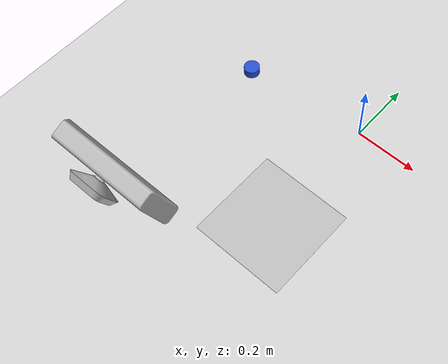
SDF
<sdf version='1.6'>
  <world name='default'>
    <light name='sun' type='directional'>
      <cast_shadows>1</cast_shadows>
      <pose frame=''>0 0 10 0 -0 0</pose>
      <diffuse>0.8 0.8 0.8 1</diffuse>
      <specular>0.2 0.2 0.2 1</specular>
      <attenuation>
        <range>1000</range>
        <constant>0.9</constant>
        <linear>0.01</linear>
        <quadratic>0.001</quadratic>
      </attenuation>
      <direction>-0.5 0.1 -0.9</direction>
    </light>
    <gravity>0 0 -9.8</gravity>
    <magnetic_field>6e-06 2.3e-05 -4.2e-05</magnetic_field>
    <atmosphere type='adiabatic'/>
    <physics name='default_physics' default='0' type='ode'>
      <max_step_size>0.001</max_step_size>
      <real_time_factor>1</real_time_factor>
      <real_time_update_rate>1000</real_time_update_rate>
    </physics>
    <scene>
      <ambient>0.4 0.4 0.4 1</ambient>
      <background>0.7 0.7 0.7 1</background>
      <shadows>1</shadows>
    </scene>
    <wind/>
    <spherical_coordinates>
      <surface_model>EARTH_WGS84</surface_model>
      <latitude_deg>0</latitude_deg>
      <longitude_deg>0</longitude_deg>
      <elevation>0</elevation>
      <heading_deg>0</heading_deg>
    </spherical_coordinates>

    <model name='ground_plane'>
      <static>1</static>
      <link name='link'>
        <collision name='collision'>
          <geometry>
            <plane>
              <normal>0 0 1</normal>
              <size>100 100</size>
            </plane>
          </geometry>
          <surface>
            <contact>
              <collide_bitmask>65535</collide_bitmask>
              <ode/>
            </contact>
            <friction>
              <ode>
                <mu>100</mu>
                <mu2>50</mu2>
              </ode>
              <torsional>
                <ode/>
              </torsional>
            </friction>
            <bounce/>
          </surface>
          <max_contacts>10</max_contacts>
        </collision>
        <visual name='visual'>
          <cast_shadows>0</cast_shadows>
          <geometry>
            <plane>
              <normal>0 0 1</normal>
              <size>100 100</size>
            </plane>
          </geometry>
          <material>
            <script>
              <uri>file://media/materials/scripts/gazebo.material</uri>
              <name>Gazebo/Grey</name>
            </script>
          </material>
        </visual>
        <self_collide>0</self_collide>
        <enable_wind>0</enable_wind>
        <kinematic>0</kinematic>
      </link>
    </model>

    <model name='kinect_ros'>
      <pose frame=''>0 -0.8 0.8 0 1.15 1.58</pose># 1.15
      <link name='camera_link'>
        <inertial>
          <mass>0.1</mass>
          #<pose frame=''>0 0 0 0 -0 0</pose>
          <inertia>
            <ixx>1</ixx>
            <ixy>0</ixy>
            <ixz>0</ixz>
            <iyy>1</iyy>
            <iyz>0</iyz>
            <izz>1</izz>
          </inertia>
        </inertial>
        <sensor name='kinect' type='depth'>
          <camera name='__default__'>
            <horizontal_fov>1.0472</horizontal_fov>
            <image>
              <width>640</width>
              <height>480</height>
              <format>R8G8B8</format>
            </image>
            <clip>
              <near>0.05</near>
              <far>3</far>
            </clip>
          </camera>
          <update_rate>20</update_rate>
          <visualize>1</visualize>
          <plugin name='kinect_plugin' filename='libgazebo_ros_openni_kinect.so'>
            <baseline>0.2</baseline>
            <updateRate>0.0</updateRate>
            <cameraName>camera_kinect</cameraName>
            <imageTopicName>/camera/color/image_raw</imageTopicName>
            <cameraInfoTopicName>/camera/color/camera_info</cameraInfoTopicName>
            <depthImageTopicName>/camera/depth/image_raw</depthImageTopicName>
            <depthImageCameraInfoTopicName>/camera/depth/camera_info</depthImageCameraInfoTopicName>
            <pointCloudTopicName>/camera/depth/points</pointCloudTopicName>
            <frameName>camera_link_optical</frameName>
            <pointCloudCutoff>0.4</pointCloudCutoff>
            <pointCloudCutoffMax>3.0</pointCloudCutoffMax>
            <distortionK1>0</distortionK1>
            <distortionK2>0</distortionK2>
            <distortionK3>0</distortionK3>
            <distortionT1>0</distortionT1>
            <distortionT2>0</distortionT2>
            <CxPrime>0</CxPrime>
            <Cx>0</Cx>
            <Cy>0</Cy>
            <focalLength>0</focalLength>
            <hackBaseline>0.0</hackBaseline>
          </plugin>
        </sensor>
        <self_collide>0</self_collide>
        <enable_wind>0</enable_wind>
        <kinematic>0</kinematic>
        <pose frame=''>0 0 0 0 -0 0</pose>
        <visual name='visual'>
          <geometry>
            <mesh>
              <uri>model://kinect/meshes/kinect.dae</uri>
            </mesh>
          </geometry>
          <material>
            <shader type='pixel'/>
          </material>
          <pose frame=''>0 0 0 0 -0 0</pose>
          <transparency>0</transparency>
          <cast_shadows>1</cast_shadows>
        </visual>
        <collision name='collision'>
          <laser_retro>0</laser_retro>
          <max_contacts>10</max_contacts>
          <pose frame=''>0 0 0 0 -0 0</pose>
          <geometry>
            <box>
              <size>0.073 0.276 0.072</size>
            </box>
          </geometry>
          <surface>
            <friction>
              <ode>
                <mu>1</mu>
                <mu2>1</mu2>
                <fdir1>0 0 0</fdir1>
                <slip1>0</slip1>
                <slip2>0</slip2>
              </ode>
              <torsional>
                <coefficient>1</coefficient>
                <patch_radius>0</patch_radius>
                <surface_radius>0</surface_radius>
                <use_patch_radius>1</use_patch_radius>
                <ode>
                  <slip>0</slip>
                </ode>
              </torsional>
            </friction>
            <bounce>
              <restitution_coefficient>0</restitution_coefficient>
              <threshold>1e+06</threshold>
            </bounce>
            <contact>
              <collide_without_contact>0</collide_without_contact>
              <collide_without_contact_bitmask>1</collide_without_contact_bitmask>
              <collide_bitmask>1</collide_bitmask>
              <ode>
                <soft_cfm>0</soft_cfm>
                <soft_erp>0.2</soft_erp>
                <kp>1e+13</kp>
                <kd>1</kd>
                <max_vel>0.01</max_vel>
                <min_depth>0</min_depth>
              </ode>
              <bullet>
                <split_impulse>1</split_impulse>
                <split_impulse_penetration_threshold>-0.01</split_impulse_penetration_threshold>
                <soft_cfm>0</soft_cfm>
                <soft_erp>0.2</soft_erp>
                <kp>1e+13</kp>
                <kd>1</kd>
              </bullet>
            </contact>
          </surface>
        </collision>
      </link>
      <static>1</static>
      <allow_auto_disable>1</allow_auto_disable>
    </model>

    <model name='tic_tac_toe_board'>
      <link name='link'>
        <self_collide>0</self_collide>
        <enable_wind>0</enable_wind>
        <kinematic>0</kinematic>
        <pose frame=''>0 0 0 0 -0 0</pose>
        <gravity>1</gravity>
        <visual name='visual'>
          <geometry>
            <box>
              <size>0.3 0.3 0.0001</size>
            </box>
          </geometry>
          <material>
            <script>
              <uri>model://tic_tac_toe_board/materials/scripts</uri>
              <uri>model://tic_tac_toe_board/materials/textures</uri>
              <name>Grid33</name>
            </script>
          </material>
        </visual>
        <collision name='collision'>
          <geometry>
            <box>
              <size>0.3 0.3 0.0003</size>
            </box>
          </geometry>
          <max_contacts>10</max_contacts>
          <surface>
            <contact>
              <ode/>
            </contact>
            <bounce/>
            <friction>
              <torsional>
                <ode/>
              </torsional>
              <ode/>
            </friction>
          </surface>
        </collision>
      </link>
      <static>1</static>
      <allow_auto_disable>1</allow_auto_disable>
      <pose frame=''>0 -0.40 0 0 -0 0</pose>
    </model>

    <model name='blue_cylinder_short'>
      <link name='blue_cylinder_short_link'>
        <inertial>
          <mass>1</mass>
          <inertia>
            <ixx>0.145833</ixx>
            <ixy>0</ixy>
            <ixz>0</ixz>
            <iyy>0.145833</iyy>
            <iyz>0</iyz>
            <izz>0.125</izz>
          </inertia>
          <pose frame=''>0 0 0 0 -0 0</pose>
        </inertial>
        <self_collide>0</self_collide>
        <enable_wind>0</enable_wind>
        <kinematic>0</kinematic>
        <pose frame=''>-0.4 -0.04 0 0 -0 0</pose>
        <gravity>1</gravity>
        <visual name='visual'>
          <geometry>
            <cylinder>
              <radius>0.025</radius>
              <length>0.05</length>
            </cylinder>
          </geometry>
          <material>
            <script>
              <name>Gazebo/Blue</name>
              <uri>file://media/materials/scripts/gazebo.material</uri>
            </script>
            <shader type='pixel'>
              <normal_map>__default__</normal_map>
            </shader>
            <ambient>0.125 0.29 0.529 1</ambient>
            <diffuse>0.125 0.29 0.529 1</diffuse>
            <specular>0.125 0.29 0.529 1</specular>
            <emissive>0.125 0.29 0.529 1</emissive>
          </material>
          <pose frame=''>0 0 0 0 -0 0</pose>
          <transparency>0</transparency>
          <cast_shadows>1</cast_shadows>
        </visual>
        <collision name='collision'>
          <laser_retro>0</laser_retro>
          <max_contacts>10</max_contacts>
          <pose frame=''>0 0 0 0 -0 0</pose>
          <geometry>
            <cylinder>
              <radius>0.025</radius>
              <length>0.05</length>
            </cylinder>
          </geometry>
          <surface>
            <friction>
              <ode>
                <mu>1</mu>
                <mu2>1</mu2>
                <fdir1>0 0 0</fdir1>
                <slip1>0</slip1>
                <slip2>0</slip2>
              </ode>
              <torsional>
                <coefficient>1</coefficient>
                <patch_radius>0</patch_radius>
                <surface_radius>0</surface_radius>
                <use_patch_radius>1</use_patch_radius>
                <ode>
                  <slip>0</slip>
                </ode>
              </torsional>
            </friction>
            <bounce>
              <restitution_coefficient>0</restitution_coefficient>
              <threshold>1e+06</threshold>
            </bounce>
            <contact>
              <collide_without_contact>0</collide_without_contact>
              <collide_without_contact_bitmask>1</collide_without_contact_bitmask>
              <collide_bitmask>1</collide_bitmask>
              <ode>
                <soft_cfm>0</soft_cfm>
                <soft_erp>0.2</soft_erp>
                <kp>1e+13</kp>
                <kd>1</kd>
                <max_vel>0.01</max_vel>
                <min_depth>0</min_depth>
              </ode>
              <bullet>
                <split_impulse>1</split_impulse>
                <split_impulse_penetration_threshold>-0.01</split_impulse_penetration_threshold>
                <soft_cfm>0</soft_cfm>
                <soft_erp>0.2</soft_erp>
                <kp>1e+13</kp>
                <kd>1</kd>
              </bullet>
            </contact>
          </surface>
        </collision>
      </link>
      <static>0</static>
      <allow_auto_disable>1</allow_auto_disable>
      <pose frame=''>0 0 0 0 0 0</pose>
    </model>

    <gui fullscreen='0'>
      <camera name='user_camera'>
        <pose frame=''>7.27645 -2.4309 3.63698 0 0.235643 2.89219</pose>
        <view_controller>orbit</view_controller>
        <projection_type>perspective</projection_type>
      </camera>
    </gui>
  </world>
</sdf>
